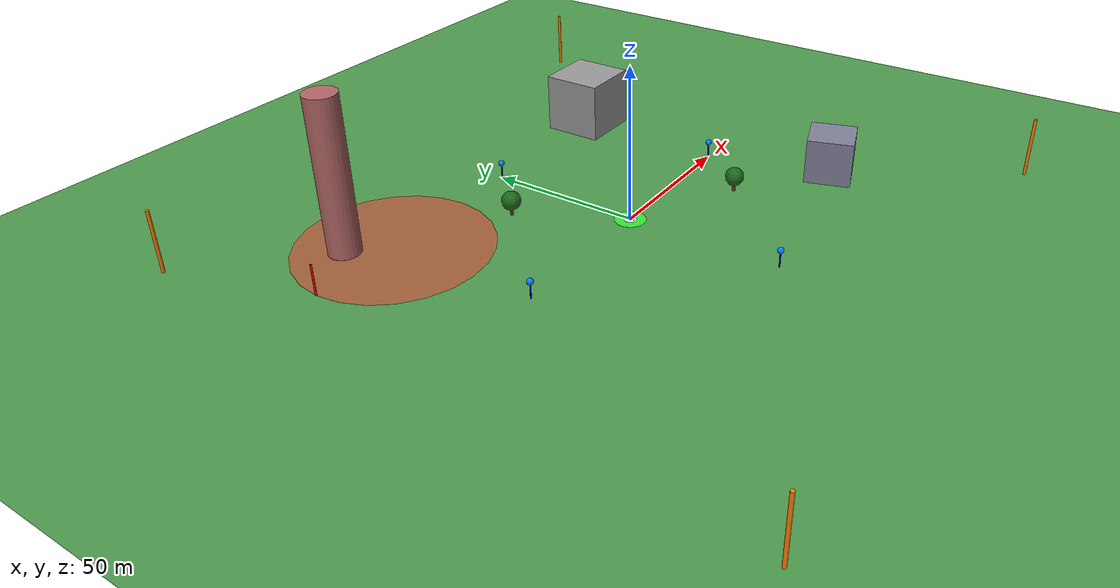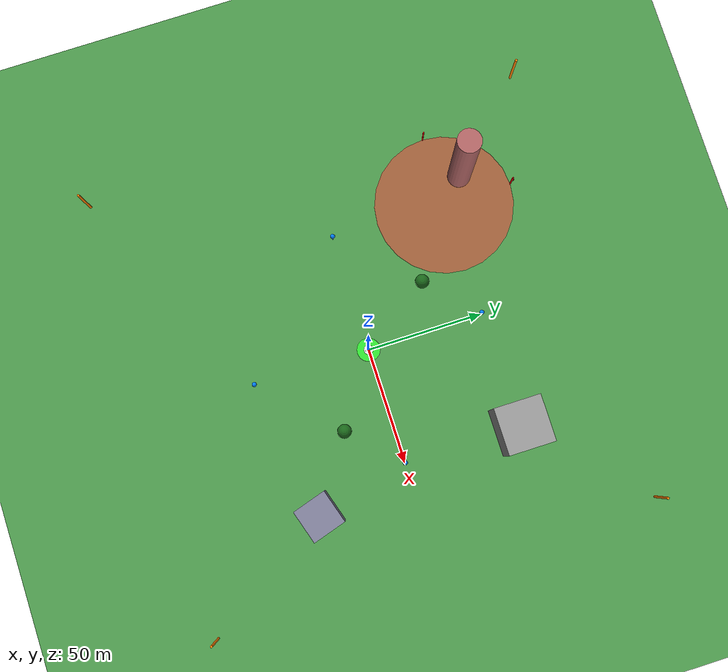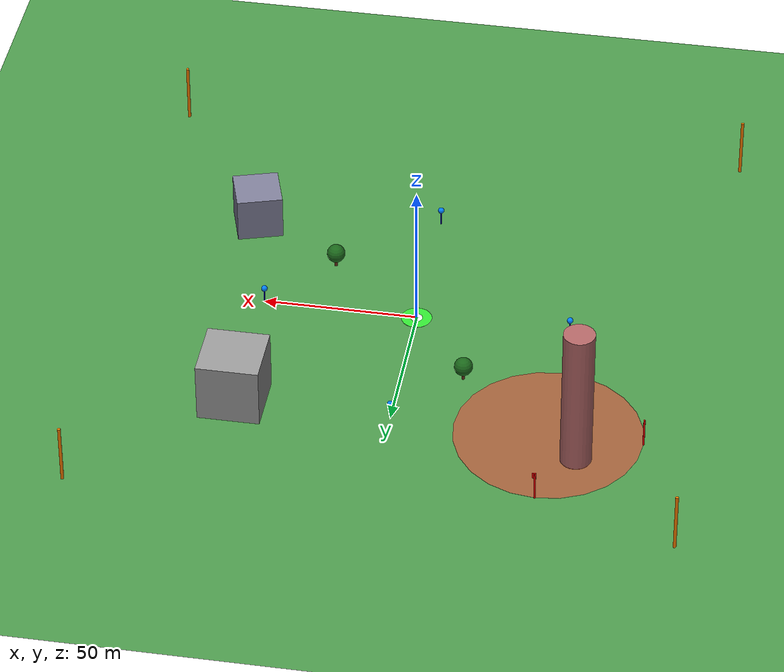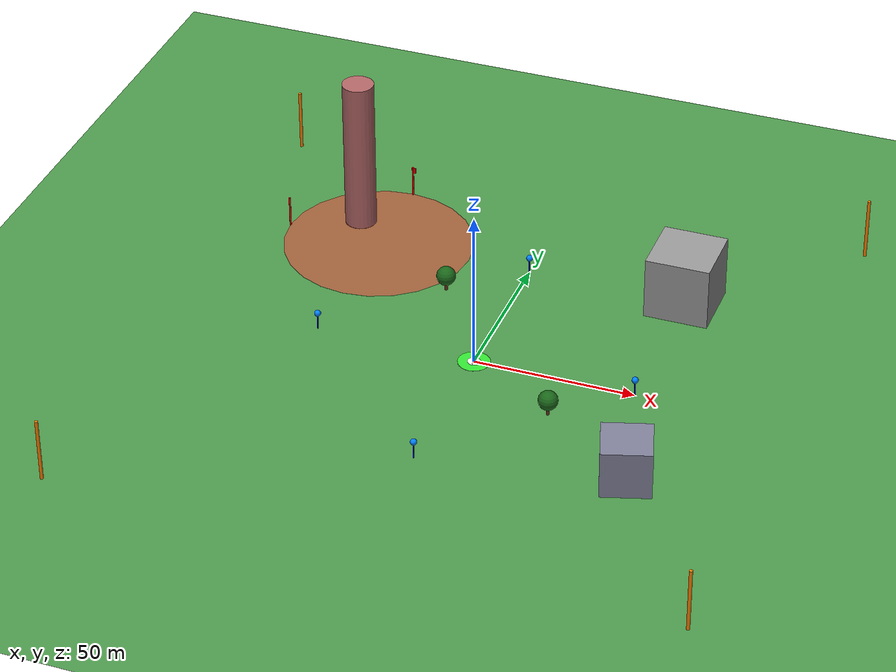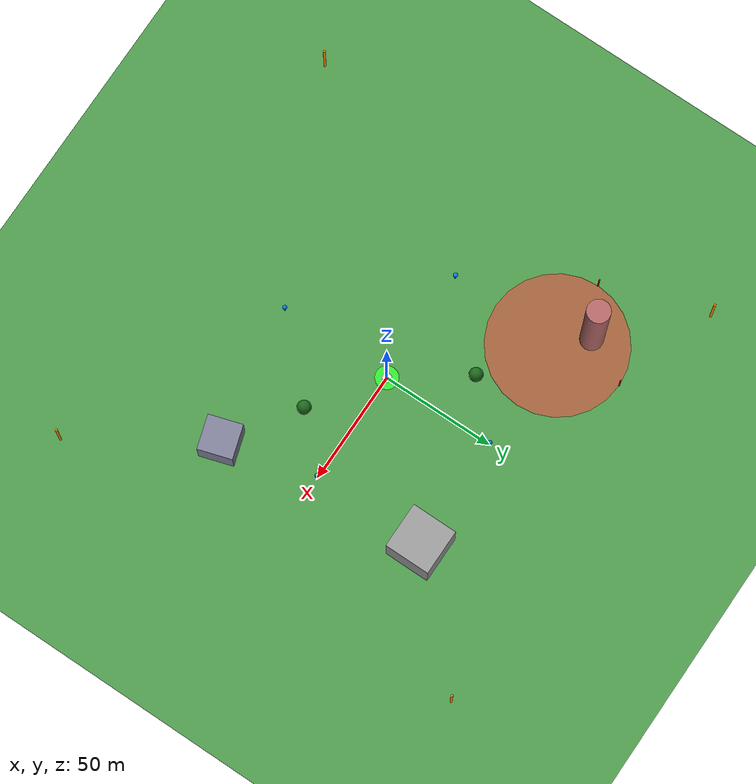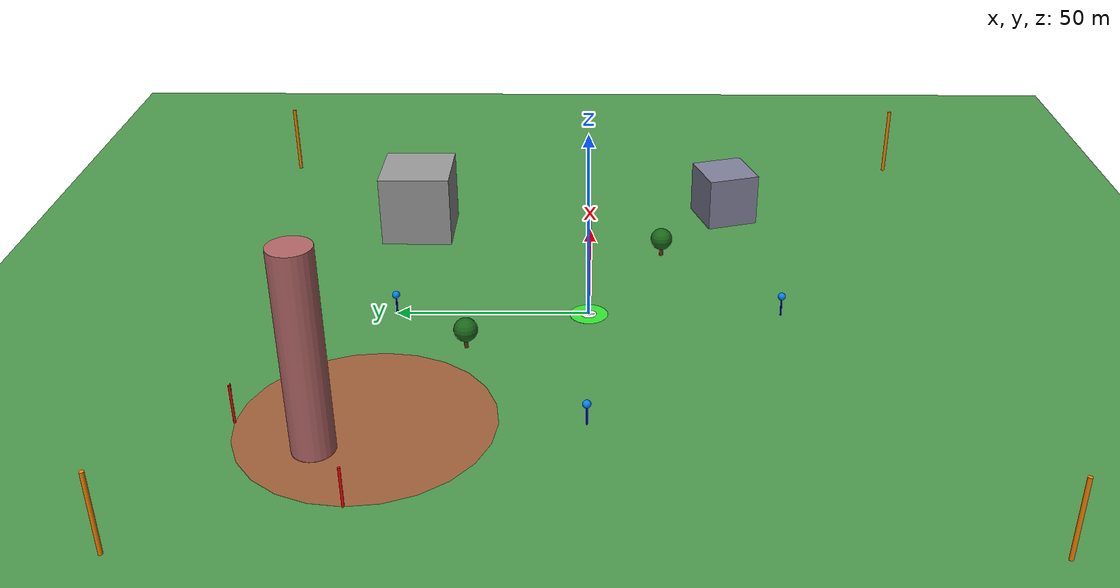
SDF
<?xml version="1.0" ?>
<sdf version="1.8">
  <world name="flyby_training">

    <!-- Physics Configuration -->
    <physics type="ode">
      <max_step_size>0.004</max_step_size>
      <real_time_factor>1.0</real_time_factor>
      <real_time_update_rate>250</real_time_update_rate>
    </physics>

    <!-- Scene Configuration -->
    <scene>
      <ambient>0.4 0.4 0.4 1</ambient>
      <background>0.7 0.8 1.0 1</background>
      <shadows>true</shadows>
    </scene>

    <!-- Sun Light -->
    <light type="directional" name="sun">
      <cast_shadows>true</cast_shadows>
      <pose>0 0 100 0 0 0</pose>
      <diffuse>0.8 0.8 0.8 1</diffuse>
      <specular>0.2 0.2 0.2 1</specular>
      <attenuation>
        <range>1000</range>
        <constant>0.9</constant>
        <linear>0.01</linear>
        <quadratic>0.001</quadratic>
      </attenuation>
      <direction>-0.5 0.5 -1</direction>
    </light>

    <!-- Ground Plane (200m x 200m) -->
    <model name="ground_plane">
      <static>true</static>
      <link name="link">
        <collision name="collision">
          <geometry>
            <plane>
              <normal>0 0 1</normal>
              <size>200 200</size>
            </plane>
          </geometry>
          <surface>
            <friction>
              <ode>
                <mu>100</mu>
                <mu2>50</mu2>
              </ode>
            </friction>
          </surface>
        </collision>
        <visual name="visual">
          <geometry>
            <plane>
              <normal>0 0 1</normal>
              <size>200 200</size>
            </plane>
          </geometry>
          <material>
            <ambient>0.3 0.5 0.3 1</ambient>
            <diffuse>0.3 0.6 0.3 1</diffuse>
            <specular>0.1 0.1 0.1 1</specular>
          </material>
        </visual>
      </link>
    </model>

    <!-- Obstacle: Building 1 (Northeast) -->
    <model name="building_1">
      <static>true</static>
      <pose>50 50 10 0 0 0</pose>
      <link name="link">
        <collision name="collision">
          <geometry>
            <box><size>20 20 20</size></box>
          </geometry>
        </collision>
        <visual name="visual">
          <geometry>
            <box><size>20 20 20</size></box>
          </geometry>
          <material>
            <ambient>0.5 0.5 0.5 1</ambient>
            <diffuse>0.6 0.6 0.6 1</diffuse>
          </material>
        </visual>
      </link>
    </model>

    <!-- Obstacle: Building 2 (Southeast) -->
    <model name="building_2">
      <static>true</static>
      <pose>60 -40 7.5 0 0 0.3</pose>
      <link name="link">
        <collision name="collision">
          <geometry>
            <box><size>15 15 15</size></box>
          </geometry>
        </collision>
        <visual name="visual">
          <geometry>
            <box><size>15 15 15</size></box>
          </geometry>
          <material>
            <ambient>0.4 0.4 0.5 1</ambient>
            <diffuse>0.5 0.5 0.6 1</diffuse>
          </material>
        </visual>
      </link>
    </model>

    <!-- Obstacle: Tower (Northwest) -->
    <model name="tower">
      <static>true</static>
      <pose>-60 60 25 0 0 0</pose>
      <link name="link">
        <collision name="collision">
          <geometry>
            <cylinder>
              <radius>5</radius>
              <length>50</length>
            </cylinder>
          </geometry>
        </collision>
        <visual name="visual">
          <geometry>
            <cylinder>
              <radius>5</radius>
              <length>50</length>
            </cylinder>
          </geometry>
          <material>
            <ambient>0.6 0.3 0.3 1</ambient>
            <diffuse>0.7 0.4 0.4 1</diffuse>
          </material>
        </visual>
      </link>
    </model>

    <!-- Trees (scattered obstacles) -->
    <model name="tree_1">
      <static>true</static>
      <pose>30 -20 4 0 0 0</pose>
      <link name="link">
        <collision name="collision">
          <geometry>
            <cylinder>
              <radius>1</radius>
              <length>8</length>
            </cylinder>
          </geometry>
        </collision>
        <visual name="trunk">
          <geometry>
            <cylinder>
              <radius>0.5</radius>
              <length>4</length>
            </cylinder>
          </geometry>
          <material>
            <ambient>0.4 0.2 0.1 1</ambient>
          </material>
        </visual>
        <visual name="foliage">
          <pose>0 0 3 0 0 0</pose>
          <geometry>
            <sphere>
              <radius>3</radius>
            </sphere>
          </geometry>
          <material>
            <ambient>0.1 0.4 0.1 1</ambient>
          </material>
        </visual>
      </link>
    </model>

    <model name="tree_2">
      <static>true</static>
      <pose>-20 30 4 0 0 0</pose>
      <link name="link">
        <collision name="collision">
          <geometry>
            <cylinder>
              <radius>1</radius>
              <length>8</length>
            </cylinder>
          </geometry>
        </collision>
        <visual name="trunk">
          <geometry>
            <cylinder>
              <radius>0.5</radius>
              <length>4</length>
            </cylinder>
          </geometry>
          <material>
            <ambient>0.4 0.2 0.1 1</ambient>
          </material>
        </visual>
        <visual name="foliage">
          <pose>0 0 3 0 0 0</pose>
          <geometry>
            <sphere>
              <radius>3</radius>
            </sphere>
          </geometry>
          <material>
            <ambient>0.1 0.4 0.1 1</ambient>
          </material>
        </visual>
      </link>
    </model>

    <!-- NFZ Marker 1 (Red zone - Northwest sector) -->
    <model name="nfz_marker_1">
      <static>true</static>
      <pose>-50 50 0.05 0 0 0</pose>
      <link name="link">
        <visual name="visual">
          <geometry>
            <cylinder>
              <radius>30</radius>
              <length>0.1</length>
            </cylinder>
          </geometry>
          <material>
            <ambient>1.0 0.0 0.0 0.5</ambient>
            <diffuse>1.0 0.2 0.2 0.5</diffuse>
          </material>
          <transparency>0.5</transparency>
        </visual>
      </link>
    </model>

    <!-- NFZ Boundary Poles (visual markers) -->
    <model name="nfz_pole_1">
      <static>true</static>
      <pose>-50 80 5 0 0 0</pose>
      <link name="link">
        <visual name="pole">
          <geometry>
            <cylinder>
              <radius>0.3</radius>
              <length>10</length>
            </cylinder>
          </geometry>
          <material>
            <ambient>1.0 0.0 0.0 1</ambient>
          </material>
        </visual>
        <visual name="flag">
          <pose>0.5 0 4 0 0 0</pose>
          <geometry>
            <box><size>1 0.1 2</size></box>
          </geometry>
          <material>
            <ambient>1.0 0.0 0.0 1</ambient>
          </material>
        </visual>
      </link>
    </model>

    <model name="nfz_pole_2">
      <static>true</static>
      <pose>-80 50 5 0 0 0</pose>
      <link name="link">
        <visual name="pole">
          <geometry>
            <cylinder>
              <radius>0.3</radius>
              <length>10</length>
            </cylinder>
          </geometry>
          <material>
            <ambient>1.0 0.0 0.0 1</ambient>
          </material>
        </visual>
      </link>
    </model>

    <!-- Landing Zone (Green marker at origin) -->
    <model name="landing_zone">
      <static>true</static>
      <pose>0 0 0.02 0 0 0</pose>
      <link name="link">
        <visual name="outer">
          <geometry>
            <cylinder>
              <radius>5</radius>
              <length>0.02</length>
            </cylinder>
          </geometry>
          <material>
            <ambient>0.0 0.8 0.0 1</ambient>
            <diffuse>0.2 0.9 0.2 1</diffuse>
          </material>
        </visual>
        <visual name="inner">
          <pose>0 0 0.01 0 0 0</pose>
          <geometry>
            <cylinder>
              <radius>2</radius>
              <length>0.02</length>
            </cylinder>
          </geometry>
          <material>
            <ambient>1.0 1.0 1.0 1</ambient>
          </material>
        </visual>
        <visual name="h_bar_1">
          <pose>0 0 0.02 0 0 0</pose>
          <geometry>
            <box><size>0.5 3 0.02</size></box>
          </geometry>
          <material>
            <ambient>1.0 1.0 1.0 1</ambient>
          </material>
        </visual>
        <visual name="h_bar_2">
          <pose>0 0 0.02 0 0 1.57</pose>
          <geometry>
            <box><size>0.5 1.5 0.02</size></box>
          </geometry>
          <material>
            <ambient>1.0 1.0 1.0 1</ambient>
          </material>
        </visual>
      </link>
    </model>

    <!-- Waypoint Markers (Blue poles at training waypoints) -->
    <model name="waypoint_1">
      <static>true</static>
      <pose>50 0 2.5 0 0 0</pose>
      <link name="link">
        <visual name="pole">
          <geometry>
            <cylinder>
              <radius>0.2</radius>
              <length>5</length>
            </cylinder>
          </geometry>
          <material>
            <ambient>0.0 0.0 1.0 1</ambient>
          </material>
        </visual>
        <visual name="sphere">
          <pose>0 0 3 0 0 0</pose>
          <geometry>
            <sphere>
              <radius>1</radius>
            </sphere>
          </geometry>
          <material>
            <ambient>0.0 0.5 1.0 1</ambient>
          </material>
        </visual>
      </link>
    </model>

    <model name="waypoint_2">
      <static>true</static>
      <pose>0 50 2.5 0 0 0</pose>
      <link name="link">
        <visual name="pole">
          <geometry>
            <cylinder>
              <radius>0.2</radius>
              <length>5</length>
            </cylinder>
          </geometry>
          <material>
            <ambient>0.0 0.0 1.0 1</ambient>
          </material>
        </visual>
        <visual name="sphere">
          <pose>0 0 3 0 0 0</pose>
          <geometry>
            <sphere>
              <radius>1</radius>
            </sphere>
          </geometry>
          <material>
            <ambient>0.0 0.5 1.0 1</ambient>
          </material>
        </visual>
      </link>
    </model>

    <model name="waypoint_3">
      <static>true</static>
      <pose>-50 0 2.5 0 0 0</pose>
      <link name="link">
        <visual name="pole">
          <geometry>
            <cylinder>
              <radius>0.2</radius>
              <length>5</length>
            </cylinder>
          </geometry>
          <material>
            <ambient>0.0 0.0 1.0 1</ambient>
          </material>
        </visual>
        <visual name="sphere">
          <pose>0 0 3 0 0 0</pose>
          <geometry>
            <sphere>
              <radius>1</radius>
            </sphere>
          </geometry>
          <material>
            <ambient>0.0 0.5 1.0 1</ambient>
          </material>
        </visual>
      </link>
    </model>

    <model name="waypoint_4">
      <static>true</static>
      <pose>0 -50 2.5 0 0 0</pose>
      <link name="link">
        <visual name="pole">
          <geometry>
            <cylinder>
              <radius>0.2</radius>
              <length>5</length>
            </cylinder>
          </geometry>
          <material>
            <ambient>0.0 0.0 1.0 1</ambient>
          </material>
        </visual>
        <visual name="sphere">
          <pose>0 0 3 0 0 0</pose>
          <geometry>
            <sphere>
              <radius>1</radius>
            </sphere>
          </geometry>
          <material>
            <ambient>0.0 0.5 1.0 1</ambient>
          </material>
        </visual>
      </link>
    </model>

    <!-- Geofence Boundary Markers (corners) -->
    <model name="geofence_ne">
      <static>true</static>
      <pose>95 95 10 0 0 0</pose>
      <link name="link">
        <visual name="visual">
          <geometry>
            <cylinder>
              <radius>0.5</radius>
              <length>20</length>
            </cylinder>
          </geometry>
          <material>
            <ambient>1.0 0.5 0.0 1</ambient>
          </material>
        </visual>
      </link>
    </model>

    <model name="geofence_nw">
      <static>true</static>
      <pose>-95 95 10 0 0 0</pose>
      <link name="link">
        <visual name="visual">
          <geometry>
            <cylinder>
              <radius>0.5</radius>
              <length>20</length>
            </cylinder>
          </geometry>
          <material>
            <ambient>1.0 0.5 0.0 1</ambient>
          </material>
        </visual>
      </link>
    </model>

    <model name="geofence_se">
      <static>true</static>
      <pose>95 -95 10 0 0 0</pose>
      <link name="link">
        <visual name="visual">
          <geometry>
            <cylinder>
              <radius>0.5</radius>
              <length>20</length>
            </cylinder>
          </geometry>
          <material>
            <ambient>1.0 0.5 0.0 1</ambient>
          </material>
        </visual>
      </link>
    </model>

    <model name="geofence_sw">
      <static>true</static>
      <pose>-95 -95 10 0 0 0</pose>
      <link name="link">
        <visual name="visual">
          <geometry>
            <cylinder>
              <radius>0.5</radius>
              <length>20</length>
            </cylinder>
          </geometry>
          <material>
            <ambient>1.0 0.5 0.0 1</ambient>
          </material>
        </visual>
      </link>
    </model>

  </world>
</sdf>
